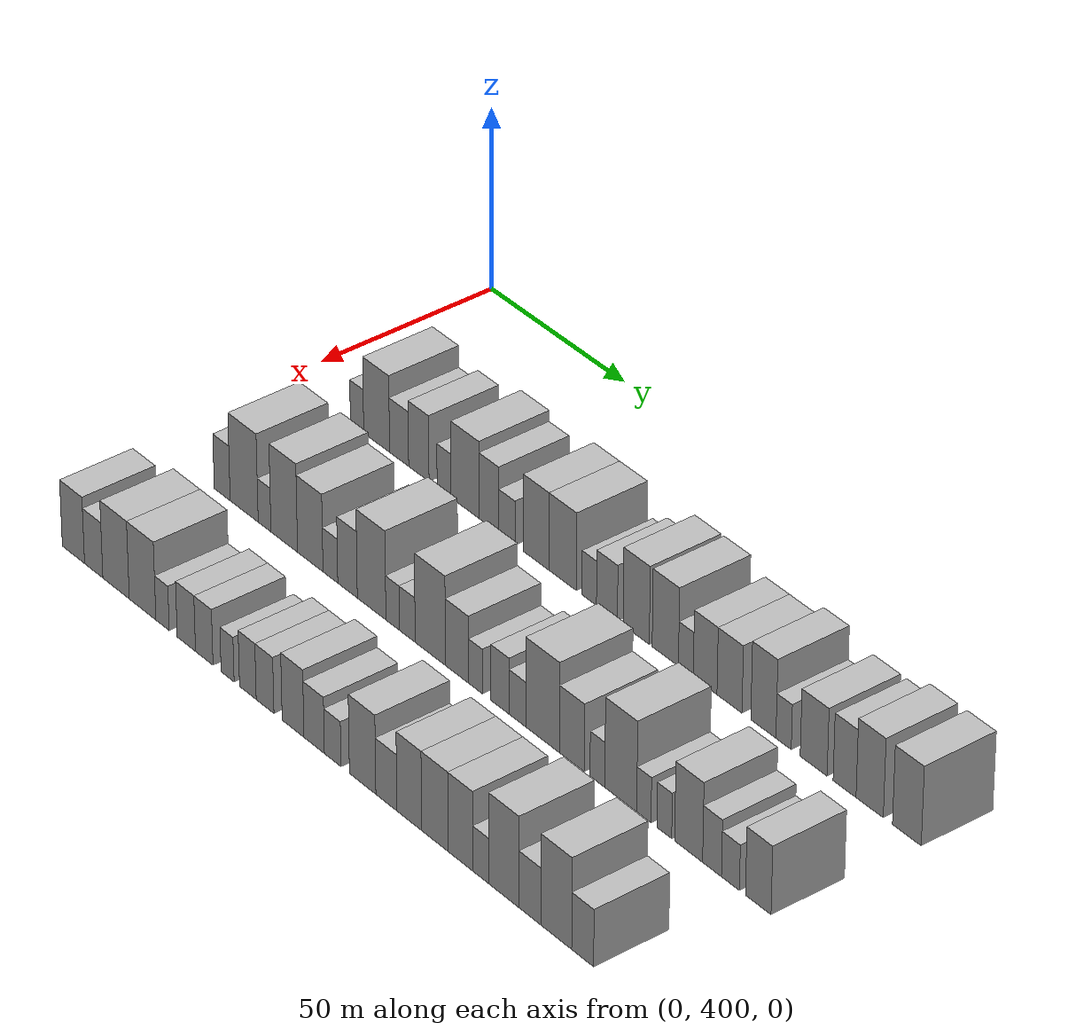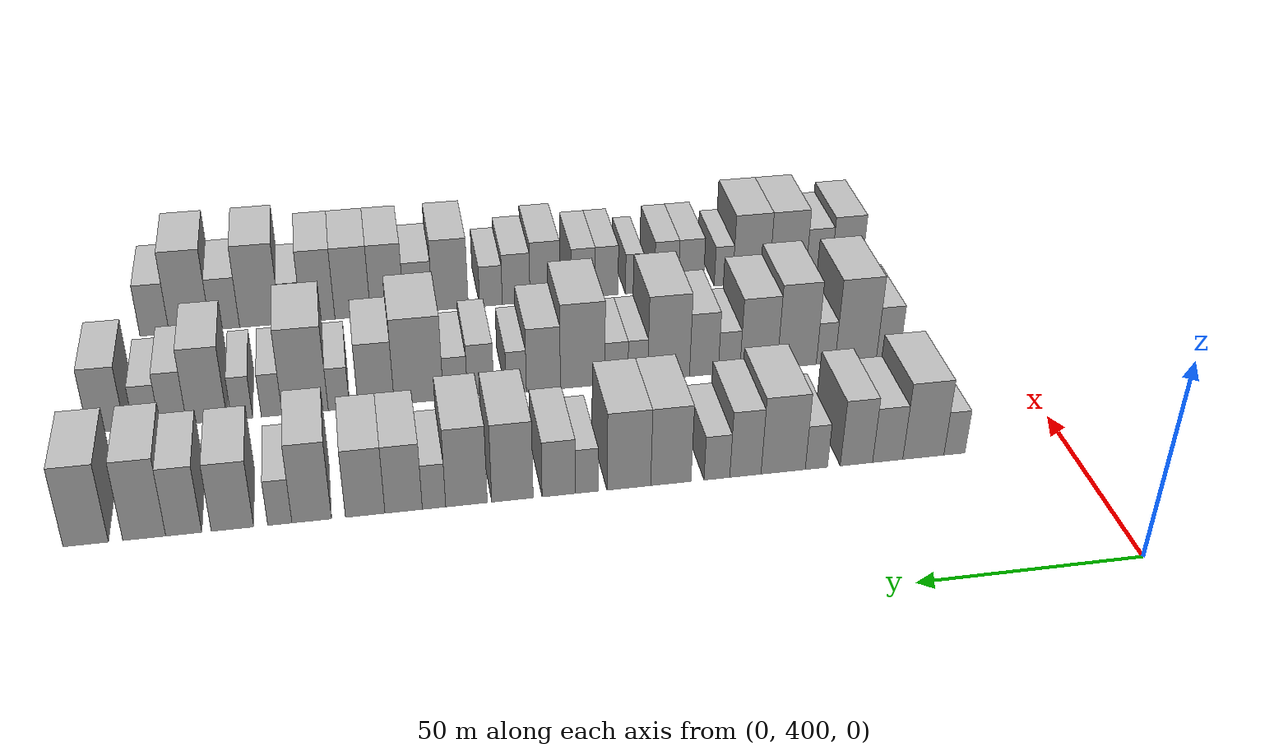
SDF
<sdf version="1.6">
 <world name="default">
  <model name="building_126">
   <static>1</static>
   <pose>50.0000 426.8713 0 0.000000 0.000000 0.000000</pose>
   <link name="link">
    <pose>0 0 6.00 0 0 0</pose>
    <collision name="collision"><geometry><box><size>20.0000 5.0458 12.0000</size></box></geometry></collision>
    <visual name="visual">
     <cast_shadows>0</cast_shadows>
     <geometry><box><size>20.0000 5.0458 12.0000</size></box></geometry>
     <material>
      <script>
       <uri>model://HANNAS_wall/materials/scripts</uri>
       <uri>model://HANNAS_wall/materials/textures</uri>
       <name>vrc/HANNAS_wall</name>
      </script>
     </material>
    </visual>
   </link>
  </model>
  <model name="building_127">
   <static>1</static>
   <pose>50.0000 434.2964 0 0.000000 0.000000 0.000000</pose>
   <link name="link">
    <pose>0 0 10.50 0 0 0</pose>
    <collision name="collision"><geometry><box><size>20.0000 9.8043 21.0000</size></box></geometry></collision>
    <visual name="visual">
     <cast_shadows>0</cast_shadows>
     <geometry><box><size>20.0000 9.8043 21.0000</size></box></geometry>
     <material>
      <script>
       <uri>model://HANNAS_wall/materials/scripts</uri>
       <uri>model://HANNAS_wall/materials/textures</uri>
       <name>vrc/HANNAS_wall</name>
      </script>
     </material>
    </visual>
   </link>
  </model>
  <model name="building_128">
   <static>1</static>
   <pose>50.0000 442.7855 0 0.000000 0.000000 0.000000</pose>
   <link name="link">
    <pose>0 0 7.50 0 0 0</pose>
    <collision name="collision"><geometry><box><size>20.0000 7.1738 15.0000</size></box></geometry></collision>
    <visual name="visual">
     <cast_shadows>0</cast_shadows>
     <geometry><box><size>20.0000 7.1738 15.0000</size></box></geometry>
     <material>
      <script>
       <uri>model://HANNAS_wall/materials/scripts</uri>
       <uri>model://HANNAS_wall/materials/textures</uri>
       <name>vrc/HANNAS_wall</name>
      </script>
     </material>
    </visual>
   </link>
  </model>
  <model name="building_129">
   <static>1</static>
   <pose>50.0000 450.1824 0 0.000000 0.000000 0.000000</pose>
   <link name="link">
    <pose>0 0 9.00 0 0 0</pose>
    <collision name="collision"><geometry><box><size>20.0000 7.6200 18.0000</size></box></geometry></collision>
    <visual name="visual">
     <cast_shadows>0</cast_shadows>
     <geometry><box><size>20.0000 7.6200 18.0000</size></box></geometry>
     <material>
      <script>
       <uri>model://HANNAS_wall/materials/scripts</uri>
       <uri>model://HANNAS_wall/materials/textures</uri>
       <name>vrc/HANNAS_wall</name>
      </script>
     </material>
    </visual>
   </link>
  </model>
  <model name="building_130">
   <static>1</static>
   <pose>50.0000 459.5996 0 0.000000 0.000000 0.000000</pose>
   <link name="link">
    <pose>0 0 6.00 0 0 0</pose>
    <collision name="collision"><geometry><box><size>20.0000 5.2145 12.0000</size></box></geometry></collision>
    <visual name="visual">
     <cast_shadows>0</cast_shadows>
     <geometry><box><size>20.0000 5.2145 12.0000</size></box></geometry>
     <material>
      <script>
       <uri>model://HANNAS_wall/materials/scripts</uri>
       <uri>model://HANNAS_wall/materials/textures</uri>
       <name>vrc/HANNAS_wall</name>
      </script>
     </material>
    </visual>
   </link>
  </model>
  <model name="building_131">
   <static>1</static>
   <pose>50.0000 467.3528 0 0.000000 0.000000 0.000000</pose>
   <link name="link">
    <pose>0 0 10.50 0 0 0</pose>
    <collision name="collision"><geometry><box><size>20.0000 10.2919 21.0000</size></box></geometry></collision>
    <visual name="visual">
     <cast_shadows>0</cast_shadows>
     <geometry><box><size>20.0000 10.2919 21.0000</size></box></geometry>
     <material>
      <script>
       <uri>model://HANNAS_wall/materials/scripts</uri>
       <uri>model://HANNAS_wall/materials/textures</uri>
       <name>vrc/HANNAS_wall</name>
      </script>
     </material>
    </visual>
   </link>
  </model>
  <model name="building_132">
   <static>1</static>
   <pose>50.0000 476.1221 0 0.000000 0.000000 0.000000</pose>
   <link name="link">
    <pose>0 0 9.00 0 0 0</pose>
    <collision name="collision"><geometry><box><size>20.0000 7.2468 18.0000</size></box></geometry></collision>
    <visual name="visual">
     <cast_shadows>0</cast_shadows>
     <geometry><box><size>20.0000 7.2468 18.0000</size></box></geometry>
     <material>
      <script>
       <uri>model://HANNAS_wall/materials/scripts</uri>
       <uri>model://HANNAS_wall/materials/textures</uri>
       <name>vrc/HANNAS_wall</name>
      </script>
     </material>
    </visual>
   </link>
  </model>
  <model name="building_133">
   <static>1</static>
   <pose>50.0000 482.7079 0 0.000000 0.000000 0.000000</pose>
   <link name="link">
    <pose>0 0 6.00 0 0 0</pose>
    <collision name="collision"><geometry><box><size>20.0000 5.9247 12.0000</size></box></geometry></collision>
    <visual name="visual">
     <cast_shadows>0</cast_shadows>
     <geometry><box><size>20.0000 5.9247 12.0000</size></box></geometry>
     <material>
      <script>
       <uri>model://HANNAS_wall/materials/scripts</uri>
       <uri>model://HANNAS_wall/materials/textures</uri>
       <name>vrc/HANNAS_wall</name>
      </script>
     </material>
    </visual>
   </link>
  </model>
  <model name="building_134">
   <static>1</static>
   <pose>50.0000 493.2734 0 0.000000 0.000000 0.000000</pose>
   <link name="link">
    <pose>0 0 10.50 0 0 0</pose>
    <collision name="collision"><geometry><box><size>20.0000 9.2064 21.0000</size></box></geometry></collision>
    <visual name="visual">
     <cast_shadows>0</cast_shadows>
     <geometry><box><size>20.0000 9.2064 21.0000</size></box></geometry>
     <material>
      <script>
       <uri>model://HANNAS_wall/materials/scripts</uri>
       <uri>model://HANNAS_wall/materials/textures</uri>
       <name>vrc/HANNAS_wall</name>
      </script>
     </material>
    </visual>
   </link>
  </model>
  <model name="building_135">
   <static>1</static>
   <pose>50.0000 502.8239 0 0.000000 0.000000 0.000000</pose>
   <link name="link">
    <pose>0 0 10.50 0 0 0</pose>
    <collision name="collision"><geometry><box><size>20.0000 9.8946 21.0000</size></box></geometry></collision>
    <visual name="visual">
     <cast_shadows>0</cast_shadows>
     <geometry><box><size>20.0000 9.8946 21.0000</size></box></geometry>
     <material>
      <script>
       <uri>model://HANNAS_wall/materials/scripts</uri>
       <uri>model://HANNAS_wall/materials/textures</uri>
       <name>vrc/HANNAS_wall</name>
      </script>
     </material>
    </visual>
   </link>
  </model>
  <model name="building_136">
   <static>1</static>
   <pose>50.0000 512.3364 0 0.000000 0.000000 0.000000</pose>
   <link name="link">
    <pose>0 0 6.00 0 0 0</pose>
    <collision name="collision"><geometry><box><size>20.0000 5.1305 12.0000</size></box></geometry></collision>
    <visual name="visual">
     <cast_shadows>0</cast_shadows>
     <geometry><box><size>20.0000 5.1305 12.0000</size></box></geometry>
     <material>
      <script>
       <uri>model://HANNAS_wall/materials/scripts</uri>
       <uri>model://HANNAS_wall/materials/textures</uri>
       <name>vrc/HANNAS_wall</name>
      </script>
     </material>
    </visual>
   </link>
  </model>
  <model name="building_137">
   <static>1</static>
   <pose>50.0000 518.6179 0 0.000000 0.000000 0.000000</pose>
   <link name="link">
    <pose>0 0 7.50 0 0 0</pose>
    <collision name="collision"><geometry><box><size>20.0000 7.4324 15.0000</size></box></geometry></collision>
    <visual name="visual">
     <cast_shadows>0</cast_shadows>
     <geometry><box><size>20.0000 7.4324 15.0000</size></box></geometry>
     <material>
      <script>
       <uri>model://HANNAS_wall/materials/scripts</uri>
       <uri>model://HANNAS_wall/materials/textures</uri>
       <name>vrc/HANNAS_wall</name>
      </script>
     </material>
    </visual>
   </link>
  </model>
  <model name="building_138">
   <static>1</static>
   <pose>50.0000 528.9314 0 0.000000 0.000000 0.000000</pose>
   <link name="link">
    <pose>0 0 10.50 0 0 0</pose>
    <collision name="collision"><geometry><box><size>20.0000 9.1947 21.0000</size></box></geometry></collision>
    <visual name="visual">
     <cast_shadows>0</cast_shadows>
     <geometry><box><size>20.0000 9.1947 21.0000</size></box></geometry>
     <material>
      <script>
       <uri>model://HANNAS_wall/materials/scripts</uri>
       <uri>model://HANNAS_wall/materials/textures</uri>
       <name>vrc/HANNAS_wall</name>
      </script>
     </material>
    </visual>
   </link>
  </model>
  <model name="building_139">
   <static>1</static>
   <pose>50.0000 539.1027 0 0.000000 0.000000 0.000000</pose>
   <link name="link">
    <pose>0 0 10.50 0 0 0</pose>
    <collision name="collision"><geometry><box><size>20.0000 9.1479 21.0000</size></box></geometry></collision>
    <visual name="visual">
     <cast_shadows>0</cast_shadows>
     <geometry><box><size>20.0000 9.1479 21.0000</size></box></geometry>
     <material>
      <script>
       <uri>model://HANNAS_wall/materials/scripts</uri>
       <uri>model://HANNAS_wall/materials/textures</uri>
       <name>vrc/HANNAS_wall</name>
      </script>
     </material>
    </visual>
   </link>
  </model>
  <model name="building_140">
   <static>1</static>
   <pose>50.0000 546.2452 0 0.000000 0.000000 0.000000</pose>
   <link name="link">
    <pose>0 0 6.00 0 0 0</pose>
    <collision name="collision"><geometry><box><size>20.0000 5.1370 12.0000</size></box></geometry></collision>
    <visual name="visual">
     <cast_shadows>0</cast_shadows>
     <geometry><box><size>20.0000 5.1370 12.0000</size></box></geometry>
     <material>
      <script>
       <uri>model://HANNAS_wall/materials/scripts</uri>
       <uri>model://HANNAS_wall/materials/textures</uri>
       <name>vrc/HANNAS_wall</name>
      </script>
     </material>
    </visual>
   </link>
  </model>
  <model name="building_141">
   <static>1</static>
   <pose>50.0000 552.8936 0 0.000000 0.000000 0.000000</pose>
   <link name="link">
    <pose>0 0 9.00 0 0 0</pose>
    <collision name="collision"><geometry><box><size>20.0000 8.1598 18.0000</size></box></geometry></collision>
    <visual name="visual">
     <cast_shadows>0</cast_shadows>
     <geometry><box><size>20.0000 8.1598 18.0000</size></box></geometry>
     <material>
      <script>
       <uri>model://HANNAS_wall/materials/scripts</uri>
       <uri>model://HANNAS_wall/materials/textures</uri>
       <name>vrc/HANNAS_wall</name>
      </script>
     </material>
    </visual>
   </link>
  </model>
  <model name="building_142">
   <static>1</static>
   <pose>50.0000 561.2526 0 0.000000 0.000000 0.000000</pose>
   <link name="link">
    <pose>0 0 9.00 0 0 0</pose>
    <collision name="collision"><geometry><box><size>20.0000 8.5583 18.0000</size></box></geometry></collision>
    <visual name="visual">
     <cast_shadows>0</cast_shadows>
     <geometry><box><size>20.0000 8.5583 18.0000</size></box></geometry>
     <material>
      <script>
       <uri>model://HANNAS_wall/materials/scripts</uri>
       <uri>model://HANNAS_wall/materials/textures</uri>
       <name>vrc/HANNAS_wall</name>
      </script>
     </material>
    </visual>
   </link>
  </model>
  <model name="building_143">
   <static>1</static>
   <pose>50.0000 572.7864 0 0.000000 0.000000 0.000000</pose>
   <link name="link">
    <pose>0 0 10.50 0 0 0</pose>
    <collision name="collision"><geometry><box><size>20.0000 8.5093 21.0000</size></box></geometry></collision>
    <visual name="visual">
     <cast_shadows>0</cast_shadows>
     <geometry><box><size>20.0000 8.5093 21.0000</size></box></geometry>
     <material>
      <script>
       <uri>model://HANNAS_wall/materials/scripts</uri>
       <uri>model://HANNAS_wall/materials/textures</uri>
       <name>vrc/HANNAS_wall</name>
      </script>
     </material>
    </visual>
   </link>
  </model>
  <model name="building_144">
   <static>1</static>
   <pose>50.0000 579.6241 0 0.000000 0.000000 0.000000</pose>
   <link name="link">
    <pose>0 0 6.00 0 0 0</pose>
    <collision name="collision"><geometry><box><size>20.0000 5.1660 12.0000</size></box></geometry></collision>
    <visual name="visual">
     <cast_shadows>0</cast_shadows>
     <geometry><box><size>20.0000 5.1660 12.0000</size></box></geometry>
     <material>
      <script>
       <uri>model://HANNAS_wall/materials/scripts</uri>
       <uri>model://HANNAS_wall/materials/textures</uri>
       <name>vrc/HANNAS_wall</name>
      </script>
     </material>
    </visual>
   </link>
  </model>
  <model name="building_145">
   <static>1</static>
   <pose>50.0000 589.7010 0 0.000000 0.000000 0.000000</pose>
   <link name="link">
    <pose>0 0 9.00 0 0 0</pose>
    <collision name="collision"><geometry><box><size>20.0000 8.9878 18.0000</size></box></geometry></collision>
    <visual name="visual">
     <cast_shadows>0</cast_shadows>
     <geometry><box><size>20.0000 8.9878 18.0000</size></box></geometry>
     <material>
      <script>
       <uri>model://HANNAS_wall/materials/scripts</uri>
       <uri>model://HANNAS_wall/materials/textures</uri>
       <name>vrc/HANNAS_wall</name>
      </script>
     </material>
    </visual>
   </link>
  </model>
  <model name="building_146">
   <static>1</static>
   <pose>50.0000 599.9878 0 0.000000 0.000000 0.000000</pose>
   <link name="link">
    <pose>0 0 9.00 0 0 0</pose>
    <collision name="collision"><geometry><box><size>20.0000 7.5859 18.0000</size></box></geometry></collision>
    <visual name="visual">
     <cast_shadows>0</cast_shadows>
     <geometry><box><size>20.0000 7.5859 18.0000</size></box></geometry>
     <material>
      <script>
       <uri>model://HANNAS_wall/materials/scripts</uri>
       <uri>model://HANNAS_wall/materials/textures</uri>
       <name>vrc/HANNAS_wall</name>
      </script>
     </material>
    </visual>
   </link>
  </model>
  <model name="building_147">
   <static>1</static>
   <pose>50.0000 608.2662 0 0.000000 0.000000 0.000000</pose>
   <link name="link">
    <pose>0 0 10.50 0 0 0</pose>
    <collision name="collision"><geometry><box><size>20.0000 8.9708 21.0000</size></box></geometry></collision>
    <visual name="visual">
     <cast_shadows>0</cast_shadows>
     <geometry><box><size>20.0000 8.9708 21.0000</size></box></geometry>
     <material>
      <script>
       <uri>model://HANNAS_wall/materials/scripts</uri>
       <uri>model://HANNAS_wall/materials/textures</uri>
       <name>vrc/HANNAS_wall</name>
      </script>
     </material>
    </visual>
   </link>
  </model>
  <model name="building_148">
   <static>1</static>
   <pose>50.0000 620.4388 0 0.000000 0.000000 0.000000</pose>
   <link name="link">
    <pose>0 0 10.50 0 0 0</pose>
    <collision name="collision"><geometry><box><size>20.0000 9.3743 21.0000</size></box></geometry></collision>
    <visual name="visual">
     <cast_shadows>0</cast_shadows>
     <geometry><box><size>20.0000 9.3743 21.0000</size></box></geometry>
     <material>
      <script>
       <uri>model://HANNAS_wall/materials/scripts</uri>
       <uri>model://HANNAS_wall/materials/textures</uri>
       <name>vrc/HANNAS_wall</name>
      </script>
     </material>
    </visual>
   </link>
  </model>
  <model name="building_256">
   <static>1</static>
   <pose>90.0000 429.3734 0 0.000000 0.000000 0.000000</pose>
   <link name="link">
    <pose>0 0 7.50 0 0 0</pose>
    <collision name="collision"><geometry><box><size>20.0000 6.0700 15.0000</size></box></geometry></collision>
    <visual name="visual">
     <cast_shadows>0</cast_shadows>
     <geometry><box><size>20.0000 6.0700 15.0000</size></box></geometry>
     <material>
      <script>
       <uri>model://HANNAS_wall/materials/scripts</uri>
       <uri>model://HANNAS_wall/materials/textures</uri>
       <name>vrc/HANNAS_wall</name>
      </script>
     </material>
    </visual>
   </link>
  </model>
  <model name="building_257">
   <static>1</static>
   <pose>90.0000 437.7462 0 0.000000 0.000000 0.000000</pose>
   <link name="link">
    <pose>0 0 12.00 0 0 0</pose>
    <collision name="collision"><geometry><box><size>20.0000 10.6755 24.0000</size></box></geometry></collision>
    <visual name="visual">
     <cast_shadows>0</cast_shadows>
     <geometry><box><size>20.0000 10.6755 24.0000</size></box></geometry>
     <material>
      <script>
       <uri>model://HANNAS_wall/materials/scripts</uri>
       <uri>model://HANNAS_wall/materials/textures</uri>
       <name>vrc/HANNAS_wall</name>
      </script>
     </material>
    </visual>
   </link>
  </model>
  <model name="building_258">
   <static>1</static>
   <pose>90.0000 445.5032 0 0.000000 0.000000 0.000000</pose>
   <link name="link">
    <pose>0 0 6.00 0 0 0</pose>
    <collision name="collision"><geometry><box><size>20.0000 4.8386 12.0000</size></box></geometry></collision>
    <visual name="visual">
     <cast_shadows>0</cast_shadows>
     <geometry><box><size>20.0000 4.8386 12.0000</size></box></geometry>
     <material>
      <script>
       <uri>model://HANNAS_wall/materials/scripts</uri>
       <uri>model://HANNAS_wall/materials/textures</uri>
       <name>vrc/HANNAS_wall</name>
      </script>
     </material>
    </visual>
   </link>
  </model>
  <model name="building_259">
   <static>1</static>
   <pose>90.0000 452.9348 0 0.000000 0.000000 0.000000</pose>
   <link name="link">
    <pose>0 0 12.00 0 0 0</pose>
    <collision name="collision"><geometry><box><size>20.0000 10.0246 24.0000</size></box></geometry></collision>
    <visual name="visual">
     <cast_shadows>0</cast_shadows>
     <geometry><box><size>20.0000 10.0246 24.0000</size></box></geometry>
     <material>
      <script>
       <uri>model://HANNAS_wall/materials/scripts</uri>
       <uri>model://HANNAS_wall/materials/textures</uri>
       <name>vrc/HANNAS_wall</name>
      </script>
     </material>
    </visual>
   </link>
  </model>
  <model name="building_260">
   <static>1</static>
   <pose>90.0000 462.6932 0 0.000000 0.000000 0.000000</pose>
   <link name="link">
    <pose>0 0 10.50 0 0 0</pose>
    <collision name="collision"><geometry><box><size>20.0000 9.4922 21.0000</size></box></geometry></collision>
    <visual name="visual">
     <cast_shadows>0</cast_shadows>
     <geometry><box><size>20.0000 9.4922 21.0000</size></box></geometry>
     <material>
      <script>
       <uri>model://HANNAS_wall/materials/scripts</uri>
       <uri>model://HANNAS_wall/materials/textures</uri>
       <name>vrc/HANNAS_wall</name>
      </script>
     </material>
    </visual>
   </link>
  </model>
  <model name="building_261">
   <static>1</static>
   <pose>90.0000 470.1768 0 0.000000 0.000000 0.000000</pose>
   <link name="link">
    <pose>0 0 6.00 0 0 0</pose>
    <collision name="collision"><geometry><box><size>20.0000 5.4748 12.0000</size></box></geometry></collision>
    <visual name="visual">
     <cast_shadows>0</cast_shadows>
     <geometry><box><size>20.0000 5.4748 12.0000</size></box></geometry>
     <material>
      <script>
       <uri>model://HANNAS_wall/materials/scripts</uri>
       <uri>model://HANNAS_wall/materials/textures</uri>
       <name>vrc/HANNAS_wall</name>
      </script>
     </material>
    </visual>
   </link>
  </model>
  <model name="building_262">
   <static>1</static>
   <pose>90.0000 476.5227 0 0.000000 0.000000 0.000000</pose>
   <link name="link">
    <pose>0 0 9.00 0 0 0</pose>
    <collision name="collision"><geometry><box><size>20.0000 7.2172 18.0000</size></box></geometry></collision>
    <visual name="visual">
     <cast_shadows>0</cast_shadows>
     <geometry><box><size>20.0000 7.2172 18.0000</size></box></geometry>
     <material>
      <script>
       <uri>model://HANNAS_wall/materials/scripts</uri>
       <uri>model://HANNAS_wall/materials/textures</uri>
       <name>vrc/HANNAS_wall</name>
      </script>
     </material>
    </visual>
   </link>
  </model>
  <model name="building_263">
   <static>1</static>
   <pose>90.0000 485.3718 0 0.000000 0.000000 0.000000</pose>
   <link name="link">
    <pose>0 0 12.00 0 0 0</pose>
    <collision name="collision"><geometry><box><size>20.0000 10.4809 24.0000</size></box></geometry></collision>
    <visual name="visual">
     <cast_shadows>0</cast_shadows>
     <geometry><box><size>20.0000 10.4809 24.0000</size></box></geometry>
     <material>
      <script>
       <uri>model://HANNAS_wall/materials/scripts</uri>
       <uri>model://HANNAS_wall/materials/textures</uri>
       <name>vrc/HANNAS_wall</name>
      </script>
     </material>
    </visual>
   </link>
  </model>
  <model name="building_264">
   <static>1</static>
   <pose>90.0000 493.0720 0 0.000000 0.000000 0.000000</pose>
   <link name="link">
    <pose>0 0 6.00 0 0 0</pose>
    <collision name="collision"><geometry><box><size>20.0000 4.9194 12.0000</size></box></geometry></collision>
    <visual name="visual">
     <cast_shadows>0</cast_shadows>
     <geometry><box><size>20.0000 4.9194 12.0000</size></box></geometry>
     <material>
      <script>
       <uri>model://HANNAS_wall/materials/scripts</uri>
       <uri>model://HANNAS_wall/materials/textures</uri>
       <name>vrc/HANNAS_wall</name>
      </script>
     </material>
    </visual>
   </link>
  </model>
  <model name="building_265">
   <static>1</static>
   <pose>90.0000 498.3971 0 0.000000 0.000000 0.000000</pose>
   <link name="link">
    <pose>0 0 6.00 0 0 0</pose>
    <collision name="collision"><geometry><box><size>20.0000 5.7309 12.0000</size></box></geometry></collision>
    <visual name="visual">
     <cast_shadows>0</cast_shadows>
     <geometry><box><size>20.0000 5.7309 12.0000</size></box></geometry>
     <material>
      <script>
       <uri>model://HANNAS_wall/materials/scripts</uri>
       <uri>model://HANNAS_wall/materials/textures</uri>
       <name>vrc/HANNAS_wall</name>
      </script>
     </material>
    </visual>
   </link>
  </model>
  <model name="building_266">
   <static>1</static>
   <pose>90.0000 506.7187 0 0.000000 0.000000 0.000000</pose>
   <link name="link">
    <pose>0 0 12.00 0 0 0</pose>
    <collision name="collision"><geometry><box><size>20.0000 10.9123 24.0000</size></box></geometry></collision>
    <visual name="visual">
     <cast_shadows>0</cast_shadows>
     <geometry><box><size>20.0000 10.9123 24.0000</size></box></geometry>
     <material>
      <script>
       <uri>model://HANNAS_wall/materials/scripts</uri>
       <uri>model://HANNAS_wall/materials/textures</uri>
       <name>vrc/HANNAS_wall</name>
      </script>
     </material>
    </visual>
   </link>
  </model>
  <model name="building_267">
   <static>1</static>
   <pose>90.0000 516.3309 0 0.000000 0.000000 0.000000</pose>
   <link name="link">
    <pose>0 0 9.00 0 0 0</pose>
    <collision name="collision"><geometry><box><size>20.0000 8.3121 18.0000</size></box></geometry></collision>
    <visual name="visual">
     <cast_shadows>0</cast_shadows>
     <geometry><box><size>20.0000 8.3121 18.0000</size></box></geometry>
     <material>
      <script>
       <uri>model://HANNAS_wall/materials/scripts</uri>
       <uri>model://HANNAS_wall/materials/textures</uri>
       <name>vrc/HANNAS_wall</name>
      </script>
     </material>
    </visual>
   </link>
  </model>
  <model name="building_268">
   <static>1</static>
   <pose>90.0000 522.9450 0 0.000000 0.000000 0.000000</pose>
   <link name="link">
    <pose>0 0 6.00 0 0 0</pose>
    <collision name="collision"><geometry><box><size>20.0000 4.9160 12.0000</size></box></geometry></collision>
    <visual name="visual">
     <cast_shadows>0</cast_shadows>
     <geometry><box><size>20.0000 4.9160 12.0000</size></box></geometry>
     <material>
      <script>
       <uri>model://HANNAS_wall/materials/scripts</uri>
       <uri>model://HANNAS_wall/materials/textures</uri>
       <name>vrc/HANNAS_wall</name>
      </script>
     </material>
    </visual>
   </link>
  </model>
  <model name="building_269">
   <static>1</static>
   <pose>90.0000 531.5977 0 0.000000 0.000000 0.000000</pose>
   <link name="link">
    <pose>0 0 7.50 0 0 0</pose>
    <collision name="collision"><geometry><box><size>20.0000 6.3894 15.0000</size></box></geometry></collision>
    <visual name="visual">
     <cast_shadows>0</cast_shadows>
     <geometry><box><size>20.0000 6.3894 15.0000</size></box></geometry>
     <material>
      <script>
       <uri>model://HANNAS_wall/materials/scripts</uri>
       <uri>model://HANNAS_wall/materials/textures</uri>
       <name>vrc/HANNAS_wall</name>
      </script>
     </material>
    </visual>
   </link>
  </model>
  <model name="building_270">
   <static>1</static>
   <pose>90.0000 537.7010 0 0.000000 0.000000 0.000000</pose>
   <link name="link">
    <pose>0 0 6.00 0 0 0</pose>
    <collision name="collision"><geometry><box><size>20.0000 5.8174 12.0000</size></box></geometry></collision>
    <visual name="visual">
     <cast_shadows>0</cast_shadows>
     <geometry><box><size>20.0000 5.8174 12.0000</size></box></geometry>
     <material>
      <script>
       <uri>model://HANNAS_wall/materials/scripts</uri>
       <uri>model://HANNAS_wall/materials/textures</uri>
       <name>vrc/HANNAS_wall</name>
      </script>
     </material>
    </visual>
   </link>
  </model>
  <model name="building_271">
   <static>1</static>
   <pose>90.0000 546.4973 0 0.000000 0.000000 0.000000</pose>
   <link name="link">
    <pose>0 0 12.00 0 0 0</pose>
    <collision name="collision"><geometry><box><size>20.0000 11.7752 24.0000</size></box></geometry></collision>
    <visual name="visual">
     <cast_shadows>0</cast_shadows>
     <geometry><box><size>20.0000 11.7752 24.0000</size></box></geometry>
     <material>
      <script>
       <uri>model://HANNAS_wall/materials/scripts</uri>
       <uri>model://HANNAS_wall/materials/textures</uri>
       <name>vrc/HANNAS_wall</name>
      </script>
     </material>
    </visual>
   </link>
  </model>
  <model name="building_272">
   <static>1</static>
   <pose>90.0000 556.6811 0 0.000000 0.000000 0.000000</pose>
   <link name="link">
    <pose>0 0 9.00 0 0 0</pose>
    <collision name="collision"><geometry><box><size>20.0000 8.5924 18.0000</size></box></geometry></collision>
    <visual name="visual">
     <cast_shadows>0</cast_shadows>
     <geometry><box><size>20.0000 8.5924 18.0000</size></box></geometry>
     <material>
      <script>
       <uri>model://HANNAS_wall/materials/scripts</uri>
       <uri>model://HANNAS_wall/materials/textures</uri>
       <name>vrc/HANNAS_wall</name>
      </script>
     </material>
    </visual>
   </link>
  </model>
  <model name="building_273">
   <static>1</static>
   <pose>90.0000 565.5113 0 0.000000 0.000000 0.000000</pose>
   <link name="link">
    <pose>0 0 6.00 0 0 0</pose>
    <collision name="collision"><geometry><box><size>20.0000 5.0680 12.0000</size></box></geometry></collision>
    <visual name="visual">
     <cast_shadows>0</cast_shadows>
     <geometry><box><size>20.0000 5.0680 12.0000</size></box></geometry>
     <material>
      <script>
       <uri>model://HANNAS_wall/materials/scripts</uri>
       <uri>model://HANNAS_wall/materials/textures</uri>
       <name>vrc/HANNAS_wall</name>
      </script>
     </material>
    </visual>
   </link>
  </model>
  <model name="building_274">
   <static>1</static>
   <pose>90.0000 573.4814 0 0.000000 0.000000 0.000000</pose>
   <link name="link">
    <pose>0 0 12.00 0 0 0</pose>
    <collision name="collision"><geometry><box><size>20.0000 10.8721 24.0000</size></box></geometry></collision>
    <visual name="visual">
     <cast_shadows>0</cast_shadows>
     <geometry><box><size>20.0000 10.8721 24.0000</size></box></geometry>
     <material>
      <script>
       <uri>model://HANNAS_wall/materials/scripts</uri>
       <uri>model://HANNAS_wall/materials/textures</uri>
       <name>vrc/HANNAS_wall</name>
      </script>
     </material>
    </visual>
   </link>
  </model>
  <model name="building_275">
   <static>1</static>
   <pose>90.0000 581.3473 0 0.000000 0.000000 0.000000</pose>
   <link name="link">
    <pose>0 0 6.00 0 0 0</pose>
    <collision name="collision"><geometry><box><size>20.0000 4.8598 12.0000</size></box></geometry></collision>
    <visual name="visual">
     <cast_shadows>0</cast_shadows>
     <geometry><box><size>20.0000 4.8598 12.0000</size></box></geometry>
     <material>
      <script>
       <uri>model://HANNAS_wall/materials/scripts</uri>
       <uri>model://HANNAS_wall/materials/textures</uri>
       <name>vrc/HANNAS_wall</name>
      </script>
     </material>
    </visual>
   </link>
  </model>
  <model name="building_276">
   <static>1</static>
   <pose>90.0000 588.2572 0 0.000000 0.000000 0.000000</pose>
   <link name="link">
    <pose>0 0 6.00 0 0 0</pose>
    <collision name="collision"><geometry><box><size>20.0000 4.9601 12.0000</size></box></geometry></collision>
    <visual name="visual">
     <cast_shadows>0</cast_shadows>
     <geometry><box><size>20.0000 4.9601 12.0000</size></box></geometry>
     <material>
      <script>
       <uri>model://HANNAS_wall/materials/scripts</uri>
       <uri>model://HANNAS_wall/materials/textures</uri>
       <name>vrc/HANNAS_wall</name>
      </script>
     </material>
    </visual>
   </link>
  </model>
  <model name="building_277">
   <static>1</static>
   <pose>90.0000 596.4118 0 0.000000 0.000000 0.000000</pose>
   <link name="link">
    <pose>0 0 10.50 0 0 0</pose>
    <collision name="collision"><geometry><box><size>20.0000 9.3492 21.0000</size></box></geometry></collision>
    <visual name="visual">
     <cast_shadows>0</cast_shadows>
     <geometry><box><size>20.0000 9.3492 21.0000</size></box></geometry>
     <material>
      <script>
       <uri>model://HANNAS_wall/materials/scripts</uri>
       <uri>model://HANNAS_wall/materials/textures</uri>
       <name>vrc/HANNAS_wall</name>
      </script>
     </material>
    </visual>
   </link>
  </model>
  <model name="building_278">
   <static>1</static>
   <pose>90.0000 604.2197 0 0.000000 0.000000 0.000000</pose>
   <link name="link">
    <pose>0 0 7.50 0 0 0</pose>
    <collision name="collision"><geometry><box><size>20.0000 6.2666 15.0000</size></box></geometry></collision>
    <visual name="visual">
     <cast_shadows>0</cast_shadows>
     <geometry><box><size>20.0000 6.2666 15.0000</size></box></geometry>
     <material>
      <script>
       <uri>model://HANNAS_wall/materials/scripts</uri>
       <uri>model://HANNAS_wall/materials/textures</uri>
       <name>vrc/HANNAS_wall</name>
      </script>
     </material>
    </visual>
   </link>
  </model>
  <model name="building_279">
   <static>1</static>
   <pose>90.0000 610.3199 0 0.000000 0.000000 0.000000</pose>
   <link name="link">
    <pose>0 0 6.00 0 0 0</pose>
    <collision name="collision"><geometry><box><size>20.0000 5.9337 12.0000</size></box></geometry></collision>
    <visual name="visual">
     <cast_shadows>0</cast_shadows>
     <geometry><box><size>20.0000 5.9337 12.0000</size></box></geometry>
     <material>
      <script>
       <uri>model://HANNAS_wall/materials/scripts</uri>
       <uri>model://HANNAS_wall/materials/textures</uri>
       <name>vrc/HANNAS_wall</name>
      </script>
     </material>
    </visual>
   </link>
  </model>
  <model name="building_280">
   <static>1</static>
   <pose>90.0000 619.4843 0 0.000000 0.000000 0.000000</pose>
   <link name="link">
    <pose>0 0 9.00 0 0 0</pose>
    <collision name="collision"><geometry><box><size>20.0000 8.3950 18.0000</size></box></geometry></collision>
    <visual name="visual">
     <cast_shadows>0</cast_shadows>
     <geometry><box><size>20.0000 8.3950 18.0000</size></box></geometry>
     <material>
      <script>
       <uri>model://HANNAS_wall/materials/scripts</uri>
       <uri>model://HANNAS_wall/materials/textures</uri>
       <name>vrc/HANNAS_wall</name>
      </script>
     </material>
    </visual>
   </link>
  </model>
  <model name="building_395">
   <static>1</static>
   <pose>130.0000 427.8816 0 0.000000 0.000000 0.000000</pose>
   <link name="link">
    <pose>0 0 9.00 0 0 0</pose>
    <collision name="collision"><geometry><box><size>20.0000 8.6041 18.0000</size></box></geometry></collision>
    <visual name="visual">
     <cast_shadows>0</cast_shadows>
     <geometry><box><size>20.0000 8.6041 18.0000</size></box></geometry>
     <material>
      <script>
       <uri>model://HANNAS_wall/materials/scripts</uri>
       <uri>model://HANNAS_wall/materials/textures</uri>
       <name>vrc/HANNAS_wall</name>
      </script>
     </material>
    </visual>
   </link>
  </model>
  <model name="building_396">
   <static>1</static>
   <pose>130.0000 435.7042 0 0.000000 0.000000 0.000000</pose>
   <link name="link">
    <pose>0 0 7.50 0 0 0</pose>
    <collision name="collision"><geometry><box><size>20.0000 7.0412 15.0000</size></box></geometry></collision>
    <visual name="visual">
     <cast_shadows>0</cast_shadows>
     <geometry><box><size>20.0000 7.0412 15.0000</size></box></geometry>
     <material>
      <script>
       <uri>model://HANNAS_wall/materials/scripts</uri>
       <uri>model://HANNAS_wall/materials/textures</uri>
       <name>vrc/HANNAS_wall</name>
      </script>
     </material>
    </visual>
   </link>
  </model>
  <model name="building_397">
   <static>1</static>
   <pose>130.0000 444.2839 0 0.000000 0.000000 0.000000</pose>
   <link name="link">
    <pose>0 0 10.50 0 0 0</pose>
    <collision name="collision"><geometry><box><size>20.0000 10.1182 21.0000</size></box></geometry></collision>
    <visual name="visual">
     <cast_shadows>0</cast_shadows>
     <geometry><box><size>20.0000 10.1182 21.0000</size></box></geometry>
     <material>
      <script>
       <uri>model://HANNAS_wall/materials/scripts</uri>
       <uri>model://HANNAS_wall/materials/textures</uri>
       <name>vrc/HANNAS_wall</name>
      </script>
     </material>
    </visual>
   </link>
  </model>
  <model name="building_398">
   <static>1</static>
   <pose>130.0000 454.3941 0 0.000000 0.000000 0.000000</pose>
   <link name="link">
    <pose>0 0 10.50 0 0 0</pose>
    <collision name="collision"><geometry><box><size>20.0000 10.1023 21.0000</size></box></geometry></collision>
    <visual name="visual">
     <cast_shadows>0</cast_shadows>
     <geometry><box><size>20.0000 10.1023 21.0000</size></box></geometry>
     <material>
      <script>
       <uri>model://HANNAS_wall/materials/scripts</uri>
       <uri>model://HANNAS_wall/materials/textures</uri>
       <name>vrc/HANNAS_wall</name>
      </script>
     </material>
    </visual>
   </link>
  </model>
  <model name="building_399">
   <static>1</static>
   <pose>130.0000 461.9589 0 0.000000 0.000000 0.000000</pose>
   <link name="link">
    <pose>0 0 6.00 0 0 0</pose>
    <collision name="collision"><geometry><box><size>20.0000 5.0272 12.0000</size></box></geometry></collision>
    <visual name="visual">
     <cast_shadows>0</cast_shadows>
     <geometry><box><size>20.0000 5.0272 12.0000</size></box></geometry>
     <material>
      <script>
       <uri>model://HANNAS_wall/materials/scripts</uri>
       <uri>model://HANNAS_wall/materials/textures</uri>
       <name>vrc/HANNAS_wall</name>
      </script>
     </material>
    </visual>
   </link>
  </model>
  <model name="building_400">
   <static>1</static>
   <pose>130.0000 470.8972 0 0.000000 0.000000 0.000000</pose>
   <link name="link">
    <pose>0 0 7.50 0 0 0</pose>
    <collision name="collision"><geometry><box><size>20.0000 6.8495 15.0000</size></box></geometry></collision>
    <visual name="visual">
     <cast_shadows>0</cast_shadows>
     <geometry><box><size>20.0000 6.8495 15.0000</size></box></geometry>
     <material>
      <script>
       <uri>model://HANNAS_wall/materials/scripts</uri>
       <uri>model://HANNAS_wall/materials/textures</uri>
       <name>vrc/HANNAS_wall</name>
      </script>
     </material>
    </visual>
   </link>
  </model>
  <model name="building_401">
   <static>1</static>
   <pose>130.0000 477.5780 0 0.000000 0.000000 0.000000</pose>
   <link name="link">
    <pose>0 0 7.50 0 0 0</pose>
    <collision name="collision"><geometry><box><size>20.0000 6.5120 15.0000</size></box></geometry></collision>
    <visual name="visual">
     <cast_shadows>0</cast_shadows>
     <geometry><box><size>20.0000 6.5120 15.0000</size></box></geometry>
     <material>
      <script>
       <uri>model://HANNAS_wall/materials/scripts</uri>
       <uri>model://HANNAS_wall/materials/textures</uri>
       <name>vrc/HANNAS_wall</name>
      </script>
     </material>
    </visual>
   </link>
  </model>
  <model name="building_402">
   <static>1</static>
   <pose>130.0000 486.2430 0 0.000000 0.000000 0.000000</pose>
   <link name="link">
    <pose>0 0 6.00 0 0 0</pose>
    <collision name="collision"><geometry><box><size>20.0000 4.8182 12.0000</size></box></geometry></collision>
    <visual name="visual">
     <cast_shadows>0</cast_shadows>
     <geometry><box><size>20.0000 4.8182 12.0000</size></box></geometry>
     <material>
      <script>
       <uri>model://HANNAS_wall/materials/scripts</uri>
       <uri>model://HANNAS_wall/materials/textures</uri>
       <name>vrc/HANNAS_wall</name>
      </script>
     </material>
    </visual>
   </link>
  </model>
  <model name="building_403">
   <static>1</static>
   <pose>130.0000 493.7162 0 0.000000 0.000000 0.000000</pose>
   <link name="link">
    <pose>0 0 7.50 0 0 0</pose>
    <collision name="collision"><geometry><box><size>20.0000 6.1281 15.0000</size></box></geometry></collision>
    <visual name="visual">
     <cast_shadows>0</cast_shadows>
     <geometry><box><size>20.0000 6.1281 15.0000</size></box></geometry>
     <material>
      <script>
       <uri>model://HANNAS_wall/materials/scripts</uri>
       <uri>model://HANNAS_wall/materials/textures</uri>
       <name>vrc/HANNAS_wall</name>
      </script>
     </material>
    </visual>
   </link>
  </model>
  <model name="building_404">
   <static>1</static>
   <pose>130.0000 500.0185 0 0.000000 0.000000 0.000000</pose>
   <link name="link">
    <pose>0 0 7.50 0 0 0</pose>
    <collision name="collision"><geometry><box><size>20.0000 6.4766 15.0000</size></box></geometry></collision>
    <visual name="visual">
     <cast_shadows>0</cast_shadows>
     <geometry><box><size>20.0000 6.4766 15.0000</size></box></geometry>
     <material>
      <script>
       <uri>model://HANNAS_wall/materials/scripts</uri>
       <uri>model://HANNAS_wall/materials/textures</uri>
       <name>vrc/HANNAS_wall</name>
      </script>
     </material>
    </visual>
   </link>
  </model>
  <model name="building_405">
   <static>1</static>
   <pose>130.0000 510.2136 0 0.000000 0.000000 0.000000</pose>
   <link name="link">
    <pose>0 0 9.00 0 0 0</pose>
    <collision name="collision"><geometry><box><size>20.0000 7.9134 18.0000</size></box></geometry></collision>
    <visual name="visual">
     <cast_shadows>0</cast_shadows>
     <geometry><box><size>20.0000 7.9134 18.0000</size></box></geometry>
     <material>
      <script>
       <uri>model://HANNAS_wall/materials/scripts</uri>
       <uri>model://HANNAS_wall/materials/textures</uri>
       <name>vrc/HANNAS_wall</name>
      </script>
     </material>
    </visual>
   </link>
  </model>
  <model name="building_406">
   <static>1</static>
   <pose>130.0000 517.8463 0 0.000000 0.000000 0.000000</pose>
   <link name="link">
    <pose>0 0 7.50 0 0 0</pose>
    <collision name="collision"><geometry><box><size>20.0000 7.3521 15.0000</size></box></geometry></collision>
    <visual name="visual">
     <cast_shadows>0</cast_shadows>
     <geometry><box><size>20.0000 7.3521 15.0000</size></box></geometry>
     <material>
      <script>
       <uri>model://HANNAS_wall/materials/scripts</uri>
       <uri>model://HANNAS_wall/materials/textures</uri>
       <name>vrc/HANNAS_wall</name>
      </script>
     </material>
    </visual>
   </link>
  </model>
  <model name="building_407">
   <static>1</static>
   <pose>130.0000 524.5038 0 0.000000 0.000000 0.000000</pose>
   <link name="link">
    <pose>0 0 6.00 0 0 0</pose>
    <collision name="collision"><geometry><box><size>20.0000 5.9629 12.0000</size></box></geometry></collision>
    <visual name="visual">
     <cast_shadows>0</cast_shadows>
     <geometry><box><size>20.0000 5.9629 12.0000</size></box></geometry>
     <material>
      <script>
       <uri>model://HANNAS_wall/materials/scripts</uri>
       <uri>model://HANNAS_wall/materials/textures</uri>
       <name>vrc/HANNAS_wall</name>
      </script>
     </material>
    </visual>
   </link>
  </model>
  <model name="building_408">
   <static>1</static>
   <pose>130.0000 535.1763 0 0.000000 0.000000 0.000000</pose>
   <link name="link">
    <pose>0 0 10.50 0 0 0</pose>
    <collision name="collision"><geometry><box><size>20.0000 9.3823 21.0000</size></box></geometry></collision>
    <visual name="visual">
     <cast_shadows>0</cast_shadows>
     <geometry><box><size>20.0000 9.3823 21.0000</size></box></geometry>
     <material>
      <script>
       <uri>model://HANNAS_wall/materials/scripts</uri>
       <uri>model://HANNAS_wall/materials/textures</uri>
       <name>vrc/HANNAS_wall</name>
      </script>
     </material>
    </visual>
   </link>
  </model>
  <model name="building_409">
   <static>1</static>
   <pose>130.0000 543.5860 0 0.000000 0.000000 0.000000</pose>
   <link name="link">
    <pose>0 0 7.50 0 0 0</pose>
    <collision name="collision"><geometry><box><size>20.0000 7.4370 15.0000</size></box></geometry></collision>
    <visual name="visual">
     <cast_shadows>0</cast_shadows>
     <geometry><box><size>20.0000 7.4370 15.0000</size></box></geometry>
     <material>
      <script>
       <uri>model://HANNAS_wall/materials/scripts</uri>
       <uri>model://HANNAS_wall/materials/textures</uri>
       <name>vrc/HANNAS_wall</name>
      </script>
     </material>
    </visual>
   </link>
  </model>
  <model name="building_410">
   <static>1</static>
   <pose>130.0000 551.6370 0 0.000000 0.000000 0.000000</pose>
   <link name="link">
    <pose>0 0 10.50 0 0 0</pose>
    <collision name="collision"><geometry><box><size>20.0000 8.6651 21.0000</size></box></geometry></collision>
    <visual name="visual">
     <cast_shadows>0</cast_shadows>
     <geometry><box><size>20.0000 8.6651 21.0000</size></box></geometry>
     <material>
      <script>
       <uri>model://HANNAS_wall/materials/scripts</uri>
       <uri>model://HANNAS_wall/materials/textures</uri>
       <name>vrc/HANNAS_wall</name>
      </script>
     </material>
    </visual>
   </link>
  </model>
  <model name="building_411">
   <static>1</static>
   <pose>130.0000 560.5654 0 0.000000 0.000000 0.000000</pose>
   <link name="link">
    <pose>0 0 10.50 0 0 0</pose>
    <collision name="collision"><geometry><box><size>20.0000 9.1917 21.0000</size></box></geometry></collision>
    <visual name="visual">
     <cast_shadows>0</cast_shadows>
     <geometry><box><size>20.0000 9.1917 21.0000</size></box></geometry>
     <material>
      <script>
       <uri>model://HANNAS_wall/materials/scripts</uri>
       <uri>model://HANNAS_wall/materials/textures</uri>
       <name>vrc/HANNAS_wall</name>
      </script>
     </material>
    </visual>
   </link>
  </model>
  <model name="building_412">
   <static>1</static>
   <pose>130.0000 569.4356 0 0.000000 0.000000 0.000000</pose>
   <link name="link">
    <pose>0 0 10.50 0 0 0</pose>
    <collision name="collision"><geometry><box><size>20.0000 8.5488 21.0000</size></box></geometry></collision>
    <visual name="visual">
     <cast_shadows>0</cast_shadows>
     <geometry><box><size>20.0000 8.5488 21.0000</size></box></geometry>
     <material>
      <script>
       <uri>model://HANNAS_wall/materials/scripts</uri>
       <uri>model://HANNAS_wall/materials/textures</uri>
       <name>vrc/HANNAS_wall</name>
      </script>
     </material>
    </visual>
   </link>
  </model>
  <model name="building_413">
   <static>1</static>
   <pose>130.0000 576.4237 0 0.000000 0.000000 0.000000</pose>
   <link name="link">
    <pose>0 0 6.00 0 0 0</pose>
    <collision name="collision"><geometry><box><size>20.0000 5.4274 12.0000</size></box></geometry></collision>
    <visual name="visual">
     <cast_shadows>0</cast_shadows>
     <geometry><box><size>20.0000 5.4274 12.0000</size></box></geometry>
     <material>
      <script>
       <uri>model://HANNAS_wall/materials/scripts</uri>
       <uri>model://HANNAS_wall/materials/textures</uri>
       <name>vrc/HANNAS_wall</name>
      </script>
     </material>
    </visual>
   </link>
  </model>
  <model name="building_414">
   <static>1</static>
   <pose>130.0000 584.3111 0 0.000000 0.000000 0.000000</pose>
   <link name="link">
    <pose>0 0 12.00 0 0 0</pose>
    <collision name="collision"><geometry><box><size>20.0000 10.3475 24.0000</size></box></geometry></collision>
    <visual name="visual">
     <cast_shadows>0</cast_shadows>
     <geometry><box><size>20.0000 10.3475 24.0000</size></box></geometry>
     <material>
      <script>
       <uri>model://HANNAS_wall/materials/scripts</uri>
       <uri>model://HANNAS_wall/materials/textures</uri>
       <name>vrc/HANNAS_wall</name>
      </script>
     </material>
    </visual>
   </link>
  </model>
  <model name="building_415">
   <static>1</static>
   <pose>130.0000 593.1913 0 0.000000 0.000000 0.000000</pose>
   <link name="link">
    <pose>0 0 7.50 0 0 0</pose>
    <collision name="collision"><geometry><box><size>20.0000 7.4128 15.0000</size></box></geometry></collision>
    <visual name="visual">
     <cast_shadows>0</cast_shadows>
     <geometry><box><size>20.0000 7.4128 15.0000</size></box></geometry>
     <material>
      <script>
       <uri>model://HANNAS_wall/materials/scripts</uri>
       <uri>model://HANNAS_wall/materials/textures</uri>
       <name>vrc/HANNAS_wall</name>
      </script>
     </material>
    </visual>
   </link>
  </model>
  <model name="building_416">
   <static>1</static>
   <pose>130.0000 602.0469 0 0.000000 0.000000 0.000000</pose>
   <link name="link">
    <pose>0 0 12.00 0 0 0</pose>
    <collision name="collision"><geometry><box><size>20.0000 10.2984 24.0000</size></box></geometry></collision>
    <visual name="visual">
     <cast_shadows>0</cast_shadows>
     <geometry><box><size>20.0000 10.2984 24.0000</size></box></geometry>
     <material>
      <script>
       <uri>model://HANNAS_wall/materials/scripts</uri>
       <uri>model://HANNAS_wall/materials/textures</uri>
       <name>vrc/HANNAS_wall</name>
      </script>
     </material>
    </visual>
   </link>
  </model>
  <model name="building_417">
   <static>1</static>
   <pose>130.0000 610.8523 0 0.000000 0.000000 0.000000</pose>
   <link name="link">
    <pose>0 0 7.50 0 0 0</pose>
    <collision name="collision"><geometry><box><size>20.0000 7.3124 15.0000</size></box></geometry></collision>
    <visual name="visual">
     <cast_shadows>0</cast_shadows>
     <geometry><box><size>20.0000 7.3124 15.0000</size></box></geometry>
     <material>
      <script>
       <uri>model://HANNAS_wall/materials/scripts</uri>
       <uri>model://HANNAS_wall/materials/textures</uri>
       <name>vrc/HANNAS_wall</name>
      </script>
     </material>
    </visual>
   </link>
  </model>
 </world>
</sdf>
